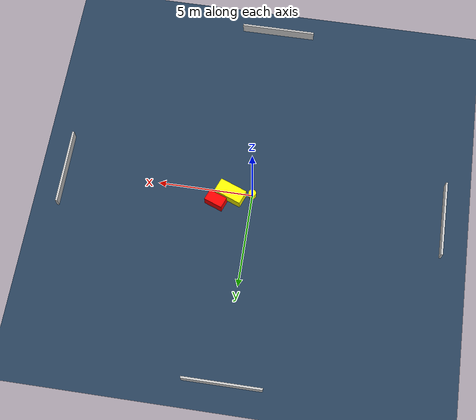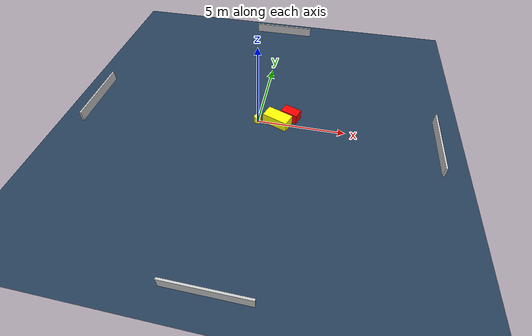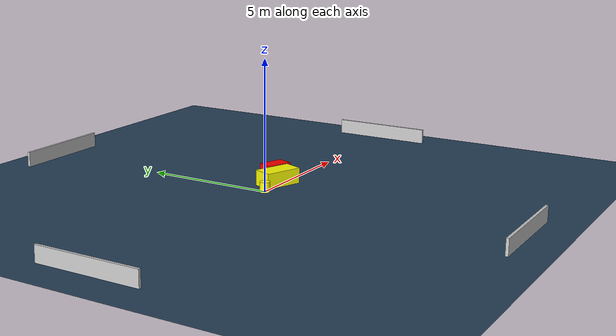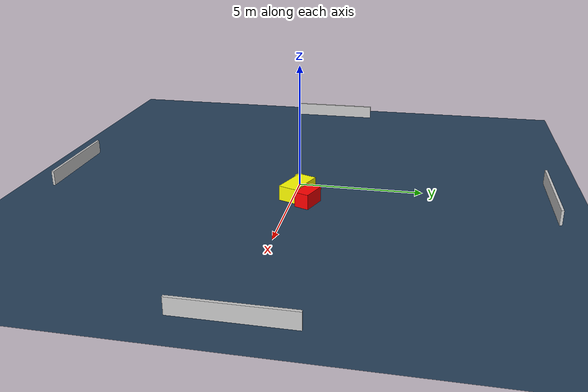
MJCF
<?xml version="1.0" ?>
<mujoco model="generated_environment">
  <option timestep="0.01" integrator="RK4" cone="elliptic"/>
  <default>
    <geom density="1"/>
  </default>
  <asset>
    <texture builtin="gradient" height="3072" name="skybox" rgb1="0.3 0.5 0.7" rgb2="0 0 0" type="skybox" width="512"/>
    <texture builtin="checker" height="300" name="groundplane" rgb1="0.2 0.3 0.4" rgb2="0.1 0.2 0.3" type="2d" width="300"/>
    <material name="groundplane" reflectance="0.2" texrepeat="5 5" texture="groundplane"/>
  </asset>
  <worldbody>
    <light dir="0 0 -1" directional="true" pos="0 0 1.5"/>
    <geom condim="3" friction="0.5 0.005 0.001" material="groundplane" name="floor" pos="0 0 0" size="0 0 0.05" type="plane"/>
    <body name="walls">
      <geom name="wall_1" condim="4" pos="-10.0 0.0 0.3" rgba="0.800000011920929 0.800000011920929 0.800000011920929 1.0" size="0.05 2.0 0.3" type="box"/>
      <geom name="wall_2" condim="4" pos="10.0 0.0 0.3" rgba="0.800000011920929 0.800000011920929 0.800000011920929 1.0" size="0.05 2.0 0.3" type="box"/>
      <geom name="wall_3" condim="4" pos="0.0 -10.0 0.3" rgba="0.800000011920929 0.800000011920929 0.800000011920929 1.0" size="2.0 0.05 0.3" type="box"/>
      <geom name="wall_4" condim="4" pos="0.0 10.0 0.3" rgba="0.800000011920929 0.800000011920929 0.800000011920929 1.0" size="2.0 0.05 0.3" type="box"/>
    </body>
    <body name="robot">
      <joint name="joint_x" type="slide" pos="0 0 0" axis="1 0 0"/>
      <joint name="joint_y" type="slide" pos="0 0 0" axis="0 1 0"/>
      <geom name="robot" type="cylinder" pos="0.0 0.0 0.2" size="0.2 0.2 0.0" mass="5.0" friction="1.0 0.005 0.0001" condim="4" rgba="1.0 1.0 0.0 1.0"/>
    </body>
    <body name="obstacle_1_movable">
      <geom name="obstacle_1_movable" condim="4" pos="1.1370753503675195 0.12718437211453681 0.3" euler="0 0 249.047724849969" friction="0.0 0.005 0.001" rgba="1.0 1.0 0.0 1.0" size="0.38218484735642344 0.752576924420578 0.3" type="box" mass="0.1"/>
      <joint type="free"/>
    </body>
    <body name="obstacle_2_static">
      <geom name="obstacle_2_static" condim="4" pos="1.8351632182045248 0.6646091093937654 0.3" euler="0 0 69.25099754145471" friction="0.0 0.005 0.001" rgba="1.0 0.0 0.0 1.0" size="0.29754324665170273 0.4983890744754694 0.3" type="box"/>
    </body>
  </worldbody>
  <actuator>
    <motor name="actuator_x" joint="joint_x" gear="1" ctrlrange="-1 1"/>
    <motor name="actuator_y" joint="joint_y" gear="1" ctrlrange="-1 1"/>
  </actuator>
</mujoco>
